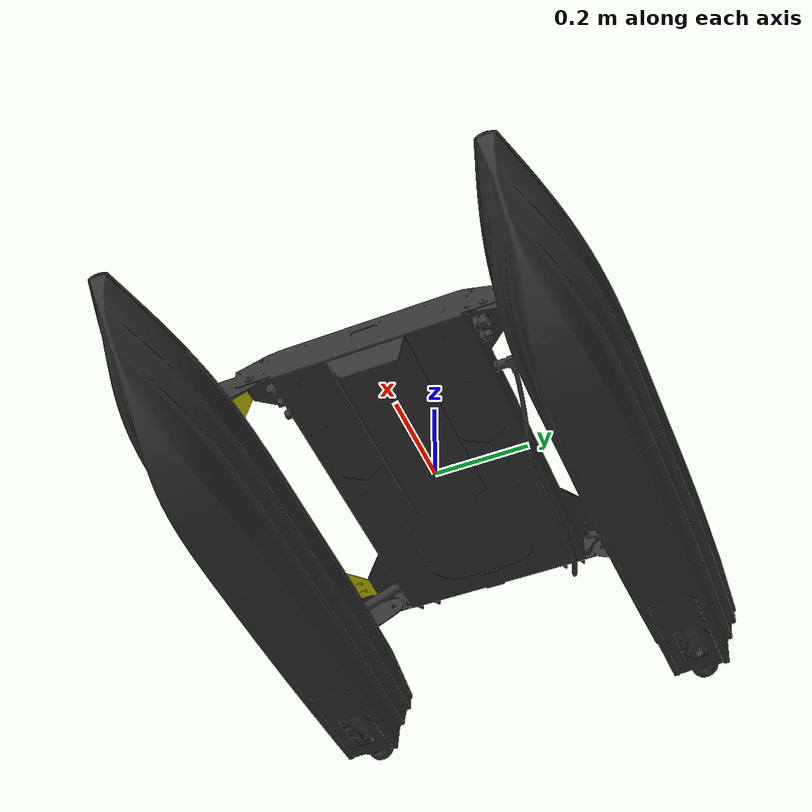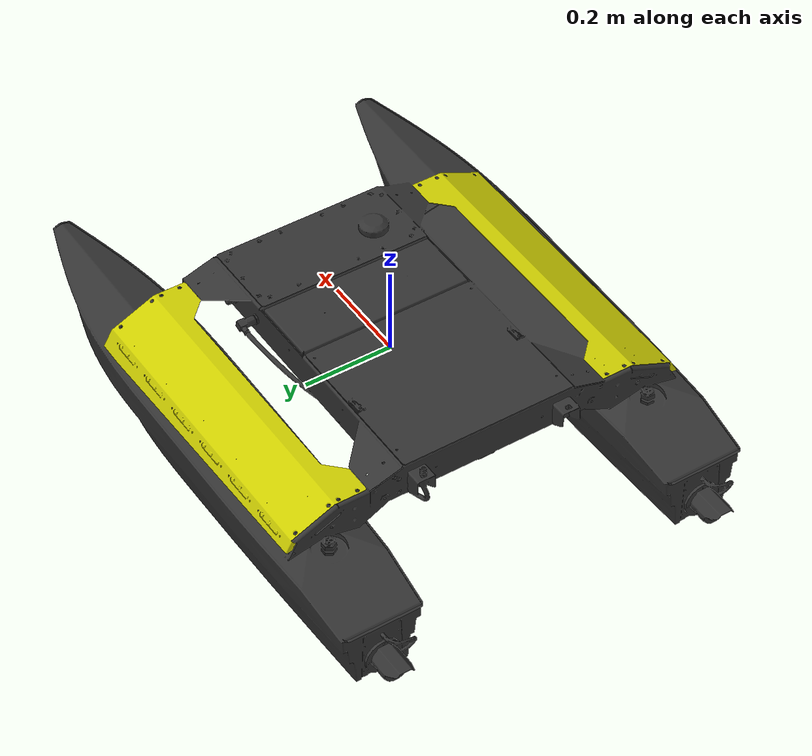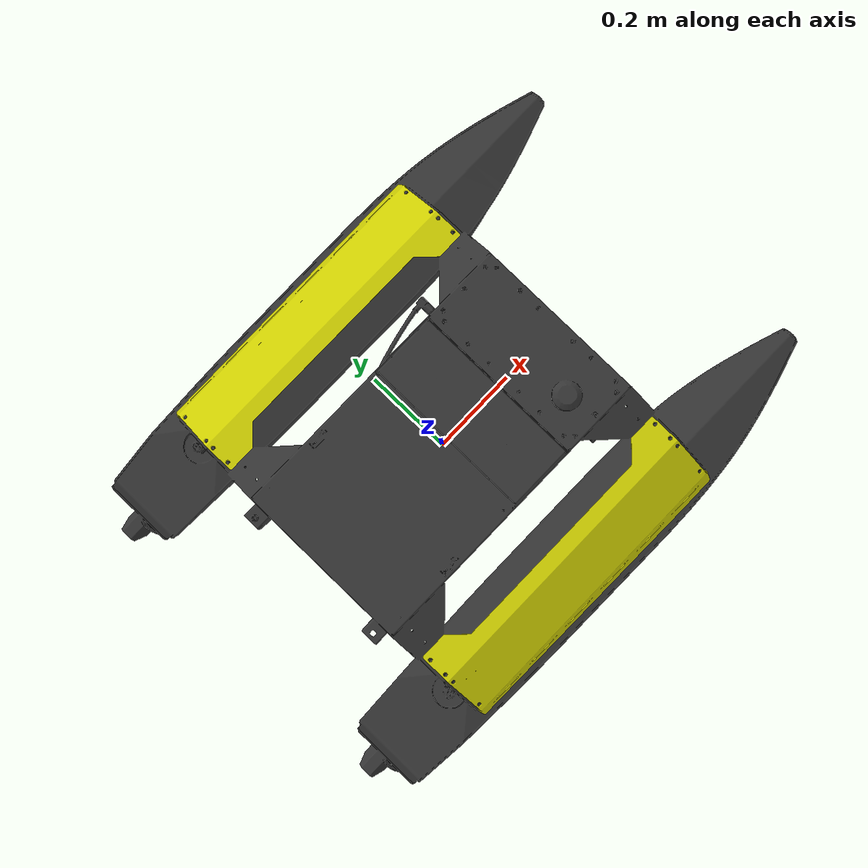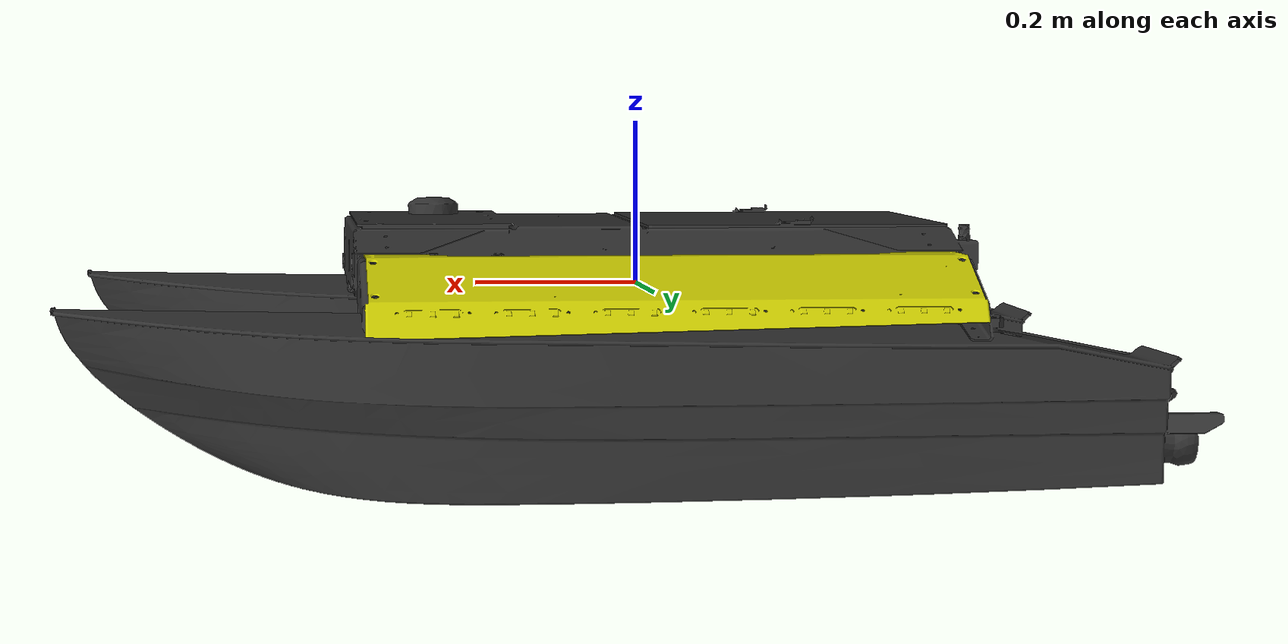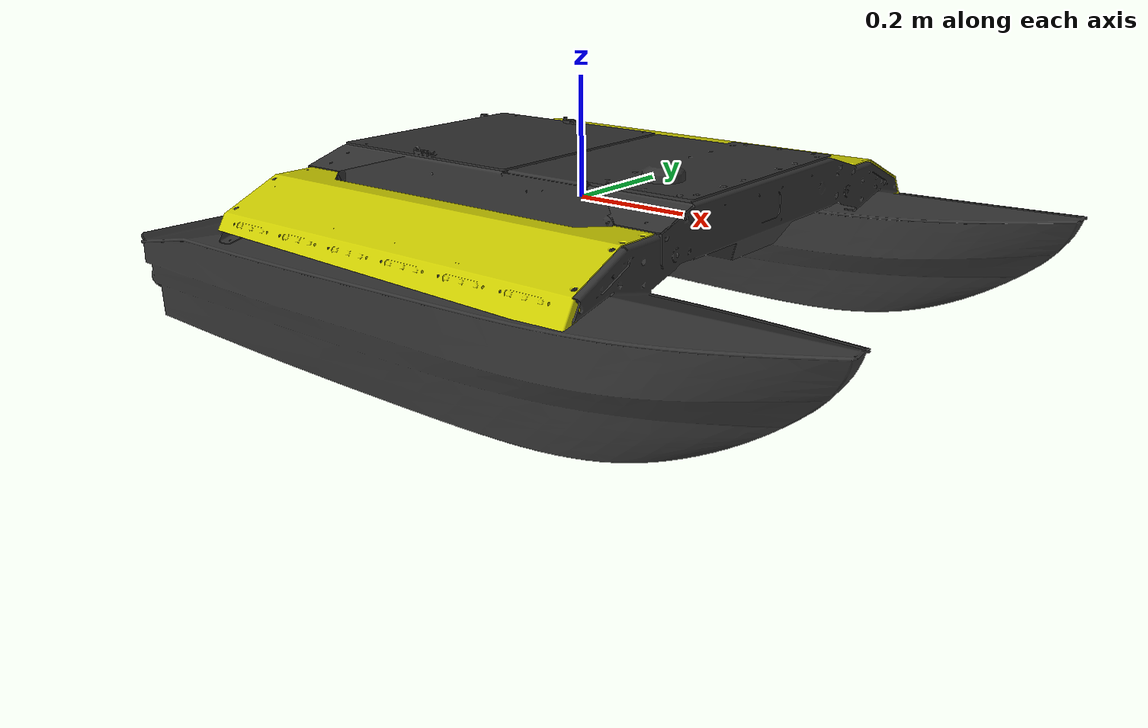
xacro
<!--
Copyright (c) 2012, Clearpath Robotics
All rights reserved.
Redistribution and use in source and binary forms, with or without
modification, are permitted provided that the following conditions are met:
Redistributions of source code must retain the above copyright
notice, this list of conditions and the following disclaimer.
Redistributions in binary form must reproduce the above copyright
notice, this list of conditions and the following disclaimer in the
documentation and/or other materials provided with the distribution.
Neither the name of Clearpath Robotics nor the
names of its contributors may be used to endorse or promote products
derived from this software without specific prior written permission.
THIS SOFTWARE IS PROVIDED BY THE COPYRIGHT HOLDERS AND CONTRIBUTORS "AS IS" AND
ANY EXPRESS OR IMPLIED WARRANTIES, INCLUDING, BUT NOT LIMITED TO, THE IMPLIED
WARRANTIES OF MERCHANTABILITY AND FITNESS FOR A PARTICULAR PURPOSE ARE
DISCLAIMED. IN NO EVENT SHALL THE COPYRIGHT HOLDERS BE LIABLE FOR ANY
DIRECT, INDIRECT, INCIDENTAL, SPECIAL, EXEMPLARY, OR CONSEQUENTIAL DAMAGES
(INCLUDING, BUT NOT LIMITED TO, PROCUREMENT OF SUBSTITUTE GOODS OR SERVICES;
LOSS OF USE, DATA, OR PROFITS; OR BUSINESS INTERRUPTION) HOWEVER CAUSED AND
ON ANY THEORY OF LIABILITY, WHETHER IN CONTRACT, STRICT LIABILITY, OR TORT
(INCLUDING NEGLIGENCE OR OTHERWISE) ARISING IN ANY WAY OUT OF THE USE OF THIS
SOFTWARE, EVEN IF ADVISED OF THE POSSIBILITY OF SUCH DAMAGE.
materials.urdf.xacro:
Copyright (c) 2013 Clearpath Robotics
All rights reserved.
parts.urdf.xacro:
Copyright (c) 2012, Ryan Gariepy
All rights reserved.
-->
<?xml version="1.0"?>

<robot
    xmlns:xi="http://www.w3.org/2001/XInclude"
    xmlns:gazebo="http://playerstage.sourceforge.net/gazebo/xmlschema/#gz"
    xmlns:model="http://playerstage.sourceforge.net/gazebo/xmlschema/#model"
    xmlns:sensor="http://playerstage.sourceforge.net/gazebo/xmlschema/#sensor"
    xmlns:body="http://playerstage.sourceforge.net/gazebo/xmlschema/#body"
    xmlns:geom="http://playerstage.sourceforge.net/gazebo/xmlschema/#geom"
    xmlns:joint="http://playerstage.sourceforge.net/gazebo/xmlschema/#joint"
    xmlns:controller="http://playerstage.sourceforge.net/gazebo/xmlschema/#controller"
    xmlns:interface="http://playerstage.sourceforge.net/gazebo/xmlschema/#interface"
    xmlns:rendering="http://playerstage.sourceforge.net/gazebo/xmlschema/#rendering"
    xmlns:renderable="http://playerstage.sourceforge.net/gazebo/xmlschema/#renderable"
    xmlns:physics="http://playerstage.sourceforge.net/gazebo/xmlschema/#physics"
    xmlns:xacro="http://ros.org/wiki/xacro" name="kingfisher">

    <!-- Included URDF/XACRO Files -->
    <xacro:include filename="$(find kingfisher_description)/urdf/materials.urdf.xacro" />
    <xacro:include filename="$(find kingfisher_description)/urdf/parts.urdf.xacro" />

    <!-- PROPERTY LIST -->
    <!--All units in m-kg-s-radians unit system -->
    <property name="M_PI" value="3.1415926535897931" />

    <!-- BASE-FOOTPRINT -->
    <!-- base_footprint is a fictitious link(frame) that is on the ground right below base_link origin, navigation stack depends on this frame -->
    <link name="base_footprint">
        <inertial>
            <mass value="0.0001" />
            <origin xyz="0 0 0" />
            <inertia ixx="0.0001" ixy="0.0" ixz="0.0"
                iyy="0.0001" iyz="0.0"
                izz="0.0001" />
        </inertial>

        <visual>
            <origin xyz="0 0 0" rpy="0 0 0" />
            <geometry>
                <box size="0.001 0.001 0.001" />
            </geometry>
        </visual>
    </link>

    <gazebo reference="base_footprint">
        <turnGravityOff>false</turnGravityOff>
    </gazebo>

    <joint name="base_footprint_joint" type="fixed">
    <origin xyz="0 0 0" rpy="0 0 0" />
        <parent link="base_footprint"/>
        <child link="base_link" />
    </joint>

    <!-- BASE-LINK -->
    <!--Actual body/chassis of the robot-->
    <link name="base_link">
        <inertial>
            <mass value="29" />
            <origin xyz="0 0 0" />
            <inertia ixx="10" ixy="0" ixz="0" iyy="10" iyz="0" izz="10" />
        </inertial>

        <visual>
            <origin xyz="0 0 0" rpy="${M_PI/2} 0 ${M_PI/2}" />
            <geometry>
                <mesh filename="package://kingfisher_description/meshes/kingfisher_base.stl" />
            </geometry>
            <material name="DarkGray" />
        </visual>

        <collision>
          <origin xyz="0 0 0" rpy="0 0 0" />
          <geometry>
                <box size = "0.1 0.1 0.1"/> <!--making it slightly bigger in x and z direction-->
            </geometry>
        </collision>
    </link>
    <gazebo reference="base_link">
        <material>Gazebo/FlatBlack</material>
        <turnGravityOff>false</turnGravityOff>
    </gazebo>

    <!-- PANEL-LINKS -->
    <!-- Top Plate -->
    <kingfisher_part parent="base_footprint" name="left_panel" mesh="left_panel"
          translateX="0.0" translateY="-0.35" translateZ="0.05"
          rotateX="${M_PI/2}" rotateY="0.0" rotateZ="${M_PI/2}"
          color="Yellow" />
    <gazebo reference="base_footprint_left_panel_part">
        <material>Gazebo/Yellow</material>
    </gazebo>

    <kingfisher_part parent="base_footprint" name="right_panel" mesh="right_panel"
          translateX="0.0" translateY="0.35" translateZ="0.05"
          rotateX="${M_PI/2}" rotateY="0.0" rotateZ="${-M_PI/2}"
          color="Yellow" />
    <gazebo reference="base_footprint_right_panel_part">
        <material>Gazebo/Yellow</material>
    </gazebo>

    <!--Gazebo Plugin for simulating Kingfisher dynamics-->
    <gazebo>
      <plugin name="kingfisher_dynamic" filename="libkingfisher_gazebo_plugins.so">
            <maxForce>62.0</maxForce>
            <bodyName>base_link</bodyName>
            <waterDensity>997.7735</waterDensity>
            <waterLevel>1</waterLevel>
            <xyzDampingFactor>20.0</xyzDampingFactor>
            <yawDampingFactor>20.0</yawDampingFactor>
            <rolPitDampingFactor>5.0</rolPitDampingFactor>
        </plugin>
    </gazebo>

</robot>

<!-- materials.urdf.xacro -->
<robot>
	<material name="Black">
		<color rgba="0.0 0.0 0.0 1.0"/>
	</material>

	<material name="Gray">
		<color rgba="0.7 0.7 0.7 1.0"/>
	</material>

	<material name="DarkGray">
		<color rgba="0.2 0.2 0.2 1.0"/>
	</material>

	<material name="White">
		<color rgba="1.0 1.0 1.0 1.0"/>
	</material>

	<material name="Yellow">
		<color rgba="0.8 0.8 0.0 1.0"/>
	</material>
</robot>

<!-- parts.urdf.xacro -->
<robot xmlns:sensor="http://playerstage.sourceforge.net/gazebo/xmlschema/#sensor"
	xmlns:controller="http://playerstage.sourceforge.net/gazebo/xmlschema/#controller"
	xmlns:interface="http://playerstage.sourceforge.net/gazebo/xmlschema/#interface"
	xmlns:xacro="http://ros.org/wiki/xacro" name="kingfisher_part">

	<property name="x_com" value="0.00000000" /> <!-- com : center of mass -->
	<property name="y_com" value="0.00000000" /> <!-- com : center of mass -->
	<property name="z_com" value="0.00000000" /> <!-- com : center of mass -->

	<property name="x_size" value="1.0" />
	<property name="y_size" value="1.0" />
	<property name="z_size" value="1.0" />

	<property name="mass" value="0.1" /> <!-- in kg-->

	<property name="ixx_com_cs" value="0.01" /> <!-- at center of mass aligned with coordinate system, kg*m^2-->
	<property name="ixy_com_cs" value="0.0" /> <!-- at center of mass aligned with coordinate system, kg*m^2-->
	<property name="ixz_com_cs" value="0.0" /> <!-- at center of mass aligned with coordinate system, kg*m^2-->
	<property name="iyy_com_cs" value="0.01" /> <!-- at center of mass aligned with coordinate system, kg*m^2-->
	<property name="iyz_com_cs" value="0.00" /> <!-- at center of mass aligned with coordinate system, kg*m^2-->
	<property name="izz_com_cs" value="0.01" /> <!-- at center of mass aligned with coordinate system, kg*m^2-->

	<xacro:macro name="kingfisher_part" params="parent name mesh translateX translateY translateZ rotateX rotateY rotateZ color">
		<joint name="${parent}_${name}_joint" type="fixed">
		    <origin xyz="${translateX} ${translateY} ${translateZ}"
		            rpy="${rotateX} ${rotateY} ${rotateZ}" />
		    <parent link="${parent}" />
		    <child link="${parent}_${name}_part" />
		</joint>

		<link name="${parent}_${name}_part">
			<inertial>
				<mass value="${mass}" />
				<origin xyz="${x_com} ${y_com} ${z_com}" />
				<inertia ixx="${ixx_com_cs}" ixy="${ixy_com_cs}" ixz="${ixz_com_cs}"
					iyy="${iyy_com_cs}" iyz="${iyz_com_cs}" izz="${izz_com_cs}" />
			</inertial>
			<visual>
				<origin xyz="0 0 0" rpy="0 0 0" />
				<geometry>
					<mesh filename="package://kingfisher_description/meshes/${mesh}.stl" />
				</geometry>
        <material name="${color}" />
			</visual>
			<collision>
				<origin xyz="0 0 0" rpy="0 0 0"/>
				<geometry>
					<box size="0.001 0.001 0.001" /> <!--the collision boundary for parts are taken into account by collision boundary of the base_link-->
				</geometry>
			</collision>
		</link>

  	</xacro:macro>
</robot>
